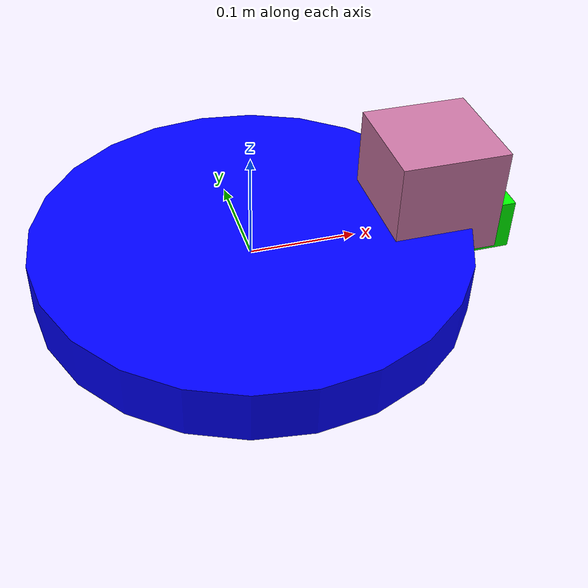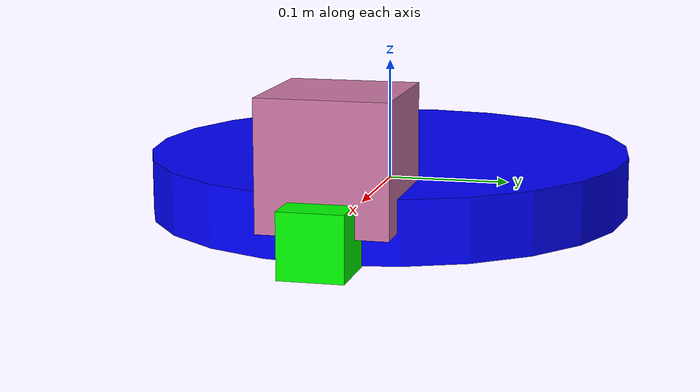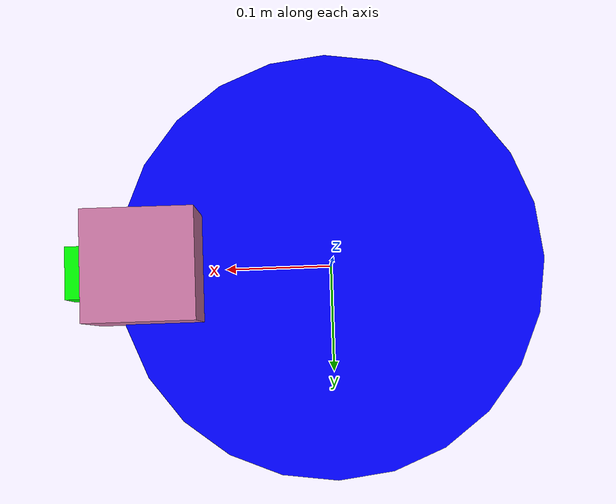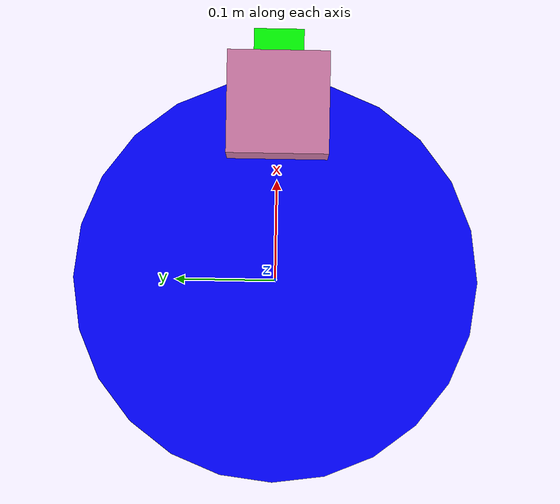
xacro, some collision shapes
<?xml version='1.0'?>

<robot name="my_robot" xmlns:xacro="http://www.ros.org/wiki/xacro">

      <xacro:include filename="$(find my_robot)/urdf/my_robot.gazebo" />

      <link name="robot_footprint"></link>

      <joint name="robot_footprint_joint" type="fixed">
        <origin xyz="0 0 0" rpy="0 0 0" />
        <parent link="robot_footprint"/>
        <child link="chassis" />
      </joint>

      <link name='chassis'>
        <pose>0 0 0.05 0 0 0</pose>

        <inertial>
          <mass value="15.0"/>
          <origin xyz="0.0 0 0" rpy=" 0 0 0"/>
          <inertia
              ixx="0.1" ixy="0" ixz="0"
              iyy="0.1" iyz="0"
              izz="0.1"
          />
        </inertial>

        <collision name='collision_chassis'>
          <origin xyz="0 0 0" rpy=" 0 0 0"/>
          <geometry>
            <cylinder radius="0.2" length="0.05"/>
          </geometry>
        </collision>

        <visual name='chassis_visual'>
          <origin xyz="0 0 0" rpy=" 0 0 0"/>
          <geometry>
            <cylinder radius="0.2" length="0.05"/>
          </geometry>
          <material name="chassis_material">
            <color rgba="0 0 1 1"/>
          </material>
        </visual>

        <collision name='back_caster_collision'>
          <origin xyz="-0.15 0 -0.02" rpy=" 0 0 0"/>
          <geometry>
            <sphere radius="0.0199"/>
          </geometry>
        </collision>

        <visual name='back_caster_visual'>
          <origin xyz="-0.15 0 -0.02" rpy=" 0 0 0"/>
          <geometry>
            <sphere radius="0.02"/>
          </geometry>
          <material name="back_caster_material">
            <color rgba="0 0 0 1"/>
          </material>
        </visual>

        <collision name='front_caster_collision'>
          <origin xyz="0.15 0 -0.02" rpy=" 0 0 0"/>
          <geometry>
            <sphere radius="0.0199"/>
          </geometry>
        </collision>

        <visual name='front_caster_visual'>
          <origin xyz="0.15 0 -0.02" rpy=" 0 0 0"/>
          <geometry>
            <sphere radius="0.02"/>
          </geometry>
          <material name="front_caster_material">
            <color rgba="0 0 0 1"/>
          </material>
        </visual>

      </link>

      <link name="left_wheel">

        <collision name='left_wheel_collision'>
          <origin xyz="0 0 0" rpy=" 0 1.57 1.57"/>
          <geometry>
            <cylinder radius="0.03" length="0.02"/>
          </geometry>
        </collision>

        <visual name='left_wheel_visual'>
          <origin xyz="0 0 0" rpy=" 0 1.57 1.57"/>
          <geometry>
            <cylinder radius="0.03" length="0.02"/>
          </geometry>
          <material name="left_wheel_material">
            <color rgba="0 0 0 1"/>
          </material>
        </visual>

        <inertial>
          <mass value="5.0"/>
          <origin xyz="0.0 0 0" rpy=" 0 0 0"/>
          <inertia
              ixx="0.1" ixy="0" ixz="0"
              iyy="0.1" iyz="0"
              izz="0.1"
          />
        </inertial>

      </link>

      <link name="right_wheel">

        <collision name='right_wheel_collision'>
          <origin xyz="0 0 0" rpy=" 0 1.57 1.57"/>
          <geometry>
            <cylinder radius="0.03" length="0.02"/>
          </geometry>
        </collision>

        <visual name='right_wheel_visual'>
          <origin xyz="0 0 0" rpy=" 0 1.57 1.57"/>
          <geometry>
            <cylinder radius="0.03" length="0.02"/>
          </geometry>
          <material name="right_wheel_material">
            <color rgba="0 0 0 1"/>
          </material>
        </visual>

        <inertial>
          <mass value="5.0"/>
          <origin xyz="0.0 0 0" rpy=" 0 0 0"/>
          <inertia
              ixx="0.1" ixy="0" ixz="0"
              iyy="0.1" iyz="0"
              izz="0.1"
          />
        </inertial>

      </link>

      <joint name="left_wheel_hinge" type="continuous">
        <origin xyz="0 0.15 -0.01" rpy="0 0 0" />
        <parent link="chassis"/>
        <child link="left_wheel" />
        <axis xyz="0 1 0" rpy="0 0 0"/>
        <limit effort="1000" velocity="1000"/>
        <dynamic damping="1.0" friction="1.0"/>
      </joint>

      <joint name="right_wheel_hinge" type="continuous">
        <origin xyz="0 -0.15 -0.01" rpy="0 0 0" />
        <parent link="chassis"/>
        <child link="right_wheel" />
        <axis xyz="0 1 0" rpy="0 0 0"/>
        <limit effort="1000" velocity="1000"/>
        <dynamic damping="1.0" friction="1.0"/>
      </joint>

      <link name="camera">

        <inertial>
          <mass value="0.1"/>
          <origin xyz="0.0 0 0" rpy=" 0 0 0"/>
          <inertia
              ixx="1e-6" ixy="0" ixz="0"
              iyy="1e-6" iyz="0"
              izz="1e-6"
          />
        </inertial>

        <collision name='collision_camera'>
          <origin xyz="0 0 0" rpy=" 0 0 0"/>
          <geometry>
            <box size="0.05 0.05 0.05"/>
          </geometry>
        </collision>

        <visual name='camera_visual'>
          <origin xyz="0 0 0" rpy=" 0 0 0"/>
          <geometry>
            <box size="0.05 0.05 0.05"/>
          </geometry>
          <material name="camera_material">
            <color rgba="0 1 0 1"/>
          </material>
        </visual>

      </link>

      <joint name="camera_joint" type="fixed">
        <origin xyz="0.225 0 0" rpy="0 0 0" />
        <parent link="chassis"/>
        <child link="camera" />
        <axis xyz="0 1 0" rpy="0 0 0"/>
      </joint>

      <joint name="camera_optical_joint" type="fixed">
        <origin xyz="0 0 0" rpy="-1.5707 0 -1.5707" />
        <parent link="camera"/>
        <child link="camera_link_optical" />
      </joint>

      <link name="camera_link_optical">
      </link>

      <link name="hokuyo">

      <inertial>
        <mass value="1e-5"/>
        <origin xyz="0.0 0 0" rpy=" 0 0 0"/>
        <inertia
            ixx="1e-6" ixy="0" ixz="0"
            iyy="1e-6" iyz="0"
            izz="1e-6"
        />

      </inertial>

      <collision name='collision_hokuyo'>
        <origin xyz="0 0 0" rpy=" 0 0 0"/>
        <geometry>
          <box size="0.1 0.1 0.1"/>
        </geometry>
      </collision>

      <visual name='visual_hokuyo'>
        <origin xyz="0 0 0" rpy=" 0 0 0"/>
        <geometry>
          <mesh filename="package://my_robot/meshes/hokuyo.dae"/>
        </geometry>
      </visual>

      </link>

      <joint name="hokuyo_joint" type="fixed">
        <origin xyz="0.17 0 0.05" rpy="0 0 0" />
        <parent link="chassis"/>
        <child link="hokuyo" />
        <axis xyz="0 1 0" rpy="0 0 0"/>
      </joint>

</robot>
